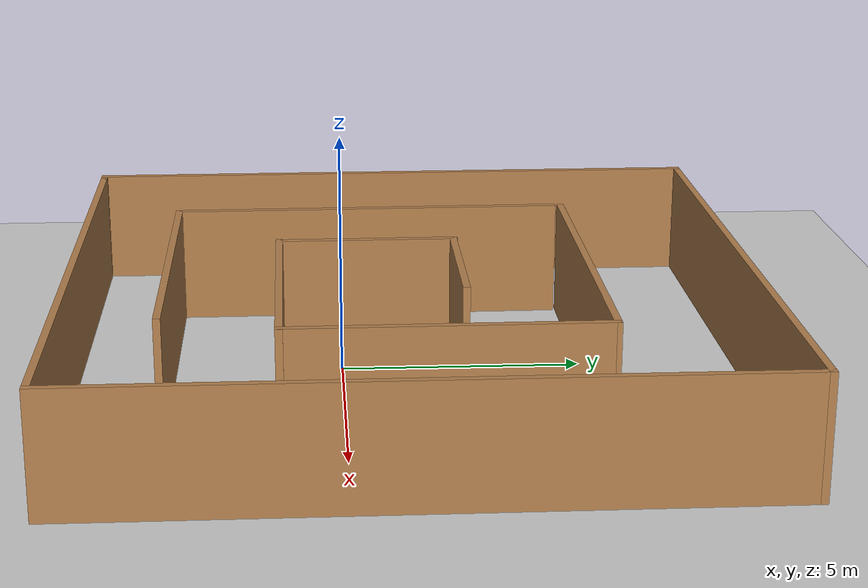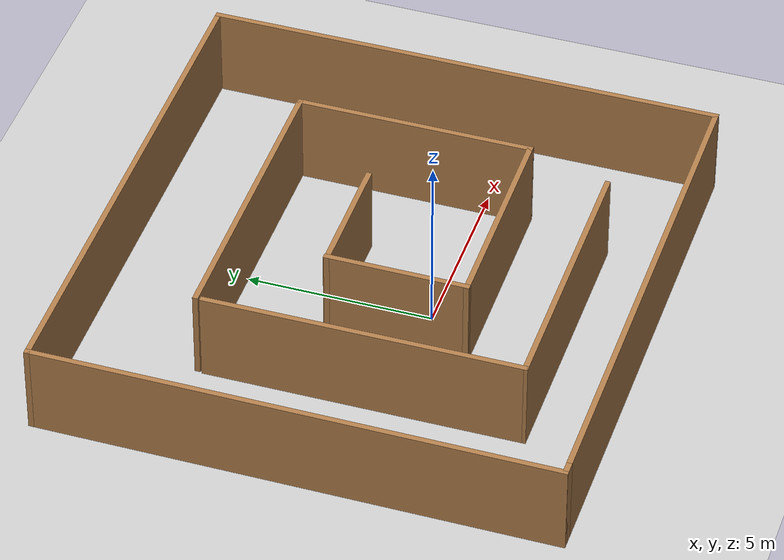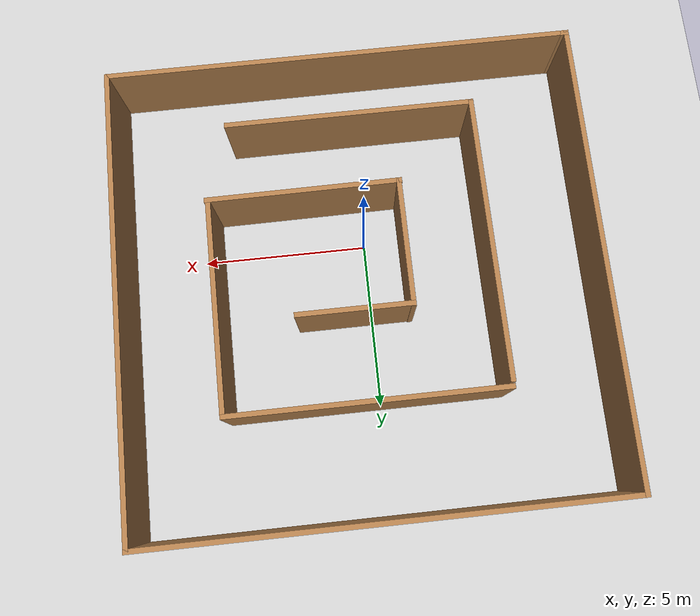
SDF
<sdf version="1.6">
 <world name="default">
  <light name="sun" type="directional">
   <pose>0 0 10 0 -0 0</pose>
   <diffuse>0.8 0.8 0.8 1</diffuse>
   <specular>0.2 0.2 0.2 1</specular>
   <attenuation>
    <range>1000</range>
    <constant>0.9</constant>
    <linear>0.01</linear>
    <quadratic>0.001</quadratic>
   </attenuation>
   <direction>-0.5 0.1 -0.9</direction>
  </light>
  <model name="ground_plane">
   <static>1</static>
   <link name="link">
    <collision name="collision">
     <geometry><plane><normal>0 0 1</normal><size>100 100</size></plane></geometry>
     <surface><friction><ode><mu>100</mu><mu2>50</mu2></ode></friction></surface>
    </collision>
    <visual name="visual">
     <cast_shadows>0</cast_shadows>
     <geometry><plane><normal>0 0 1</normal><size>100 100</size></plane></geometry>
     <material>
      <script><uri>file://media/materials/scripts/gazebo.material</uri><name>Gazebo/Grey</name></script>
     </material>
    </visual>
   </link>
  </model>
  <gravity>0 0 -9.8</gravity>
  <magnetic_field>6e-06 2.3e-05 -4.2e-05</magnetic_field>
  <atmosphere type="adiabatic"/>
  <physics name="default_physics" default="0" type="ode">
   <max_step_size>0.001</max_step_size>
   <real_time_factor>1</real_time_factor>
   <real_time_update_rate>1000</real_time_update_rate>
  </physics>
  <scene><ambient>0.4 0.4 0.4 1</ambient><background>0.7 0.7 0.7 1</background><shadows>1</shadows></scene>
  <audio><device>default</device></audio>
  <spherical_coordinates>
   <surface_model>EARTH_WGS84</surface_model>
   <latitude_deg>0</latitude_deg>
   <longitude_deg>0</longitude_deg>
   <elevation>0</elevation>
   <heading_deg>0</heading_deg>
  </spherical_coordinates>
  <model name="Untitled">
   <pose>0.213549 1.41854 0 0 -0 0</pose>
   <link name="Wall_0">
    <collision name="Wall_0_Collision">
     <geometry><box><size>14 0.15 2.5</size></box></geometry>
     <pose>0 0 1.25 0 -0 0</pose>
    </collision>
    <visual name="Wall_0_Visual">
     <pose>0 0 1.25 0 -0 0</pose>
     <geometry><box><size>14 0.15 2.5</size></box></geometry>
     <material>
      <script><uri>file://media/materials/scripts/gazebo.material</uri><name>Gazebo/Wood</name></script>
      <ambient>1 1 1 1</ambient>
     </material>
     <meta><layer>0</layer></meta>
    </visual>
    <pose>0.125 -6.925 0 0 -0 0</pose>
   </link>
   <link name="Wall_10">
    <collision name="Wall_10_Collision">
     <geometry><box><size>5.84473 0.15 2.5</size></box></geometry>
     <pose>0 0 1.25 0 -0 0</pose>
    </collision>
    <visual name="Wall_10_Visual">
     <pose>0 0 1.25 0 -0 0</pose>
     <geometry><box><size>5.84473 0.15 2.5</size></box></geometry>
     <material>
      <script><uri>file://media/materials/scripts/gazebo.material</uri><name>Gazebo/Wood</name></script>
      <ambient>1 1 1 1</ambient>
     </material>
     <meta><layer>0</layer></meta>
    </visual>
    <pose>1.43899 -2.68743 0 0 -0 0.005384</pose>
   </link>
   <link name="Wall_11">
    <collision name="Wall_11_Collision">
     <geometry><box><size>6.44172 0.15 2.5</size></box></geometry>
     <pose>0 0 1.25 0 -0 0</pose>
    </collision>
    <visual name="Wall_11_Visual">
     <pose>0 0 1.25 0 -0 0</pose>
     <geometry><box><size>6.44172 0.15 2.5</size></box></geometry>
     <material>
      <script><uri>file://media/materials/scripts/gazebo.material</uri><name>Gazebo/Wood</name></script>
      <ambient>1 1 1 1</ambient>
     </material>
     <meta><layer>0</layer></meta>
    </visual>
    <pose>4.25109 0.473758 0 0 -0 1.57227</pose>
   </link>
   <link name="Wall_12">
    <collision name="Wall_12_Collision">
     <geometry><box><size>8.25 0.15 2.5</size></box></geometry>
     <pose>0 0 1.25 0 -0 0</pose>
    </collision>
    <visual name="Wall_12_Visual">
     <pose>0 0 1.25 0 -0 0</pose>
     <geometry><box><size>8.25 0.15 2.5</size></box></geometry>
     <material>
      <script><uri>file://media/materials/scripts/gazebo.material</uri><name>Gazebo/Wood</name></script>
      <ambient>1 1 1 1</ambient>
     </material>
     <meta><layer>0</layer></meta>
    </visual>
    <pose>0.196461 3.64622 0 0 -0 3.14159</pose>
   </link>
   <link name="Wall_14">
    <collision name="Wall_14_Collision">
     <geometry><box><size>8.53737 0.15 2.5</size></box></geometry>
     <pose>0 0 1.25 0 -0 0</pose>
    </collision>
    <visual name="Wall_14_Visual">
     <pose>0 0 1.25 0 -0 0</pose>
     <geometry><box><size>8.53737 0.15 2.5</size></box></geometry>
     <material>
      <script><uri>file://media/materials/scripts/gazebo.material</uri><name>Gazebo/Wood</name></script>
      <ambient>1 1 1 1</ambient>
     </material>
     <meta><layer>0</layer></meta>
    </visual>
    <pose>-3.85974 -0.739816 0 0 -0 -1.56445</pose>
   </link>
   <link name="Wall_15">
    <collision name="Wall_15_Collision">
     <geometry><box><size>7.5212 0.15 2.5</size></box></geometry>
     <pose>0 0 1.25 0 -0 0</pose>
    </collision>
    <visual name="Wall_15_Visual">
     <pose>0 0 1.25 0 -0 0</pose>
     <geometry><box><size>7.5212 0.15 2.5</size></box></geometry>
     <material>
      <script><uri>file://media/materials/scripts/gazebo.material</uri><name>Gazebo/Wood</name></script>
      <ambient>1 1 1 1</ambient>
     </material>
     <meta><layer>0</layer></meta>
    </visual>
    <pose>-0.147545 -4.96002 0 0 -0 0</pose>
   </link>
   <link name="Wall_2">
    <collision name="Wall_2_Collision">
     <geometry><box><size>14 0.15 2.5</size></box></geometry>
     <pose>0 0 1.25 0 -0 0</pose>
    </collision>
    <visual name="Wall_2_Visual">
     <pose>0 0 1.25 0 -0 0</pose>
     <geometry><box><size>14 0.15 2.5</size></box></geometry>
     <material>
      <script><uri>file://media/materials/scripts/gazebo.material</uri><name>Gazebo/Wood</name></script>
      <ambient>1 1 1 1</ambient>
     </material>
     <meta><layer>0</layer></meta>
    </visual>
    <pose>7.05 -0 0 0 -0 1.5708</pose>
   </link>
   <link name="Wall_4">
    <collision name="Wall_4_Collision">
     <geometry><box><size>14.25 0.15 2.5</size></box></geometry>
     <pose>0 0 1.25 0 -0 0</pose>
    </collision>
    <visual name="Wall_4_Visual">
     <pose>0 0 1.25 0 -0 0</pose>
     <geometry><box><size>14.25 0.15 2.5</size></box></geometry>
     <material>
      <script><uri>file://media/materials/scripts/gazebo.material</uri><name>Gazebo/Wood</name></script>
      <ambient>1 1 1 1</ambient>
     </material>
     <meta><layer>0</layer></meta>
    </visual>
    <pose>-0 6.925 0 0 -0 3.14159</pose>
   </link>
   <link name="Wall_5">
    <collision name="Wall_5_Collision">
     <geometry><box><size>14 0.15 2.5</size></box></geometry>
     <pose>0 0 1.25 0 -0 0</pose>
    </collision>
    <visual name="Wall_5_Visual">
     <pose>0 0 1.25 0 -0 0</pose>
     <geometry><box><size>14 0.15 2.5</size></box></geometry>
     <material>
      <script><uri>file://media/materials/scripts/gazebo.material</uri><name>Gazebo/Wood</name></script>
      <ambient>1 1 1 1</ambient>
     </material>
     <meta><layer>0</layer></meta>
    </visual>
    <pose>-7.05 -0 0 0 -0 -1.5708</pose>
   </link>
   <link name="Wall_6">
    <collision name="Wall_6_Collision">
     <geometry><box><size>0.4 0.15 2.5</size></box></geometry>
     <pose>0 0 1.25 0 -0 0</pose>
    </collision>
    <visual name="Wall_6_Visual">
     <pose>0 0 1.25 0 -0 0</pose>
     <geometry><box><size>0.4 0.15 2.5</size></box></geometry>
     <material>
      <script><uri>file://media/materials/scripts/gazebo.material</uri><name>Gazebo/Wood</name></script>
      <ambient>1 1 1 1</ambient>
     </material>
     <meta><layer>0</layer></meta>
    </visual>
    <pose>-6.925 -6.925 0 0 -0 0</pose>
   </link>
   <link name="Wall_8">
    <collision name="Wall_8_Collision">
     <geometry><box><size>3.5 0.15 2.5</size></box></geometry>
     <pose>0 0 1.25 0 -0 0</pose>
    </collision>
    <visual name="Wall_8_Visual">
     <pose>0 0 1.25 0 -0 0</pose>
     <geometry><box><size>3.5 0.15 2.5</size></box></geometry>
     <material>
      <script><uri>file://media/materials/scripts/gazebo.material</uri><name>Gazebo/Wood</name></script>
      <ambient>1 1 1 1</ambient>
     </material>
     <meta><layer>0</layer></meta>
    </visual>
    <pose>0.284154 1.00525 0 0 -0 3.14159</pose>
   </link>
   <link name="Wall_9">
    <collision name="Wall_9_Collision">
     <geometry><box><size>3.8755 0.15 2.5</size></box></geometry>
     <pose>0 0 1.25 0 -0 0</pose>
    </collision>
    <visual name="Wall_9_Visual">
     <pose>0 0 1.25 0 -0 0</pose>
     <geometry><box><size>3.8755 0.15 2.5</size></box></geometry>
     <material>
      <script><uri>file://media/materials/scripts/gazebo.material</uri><name>Gazebo/Wood</name></script>
      <ambient>1 1 1 1</ambient>
     </material>
     <meta><layer>0</layer></meta>
    </visual>
    <pose>-1.39085 -0.84001 0 0 -0 -1.5708</pose>
   </link>
   <static>1</static>
  </model>
 </world>
</sdf>
